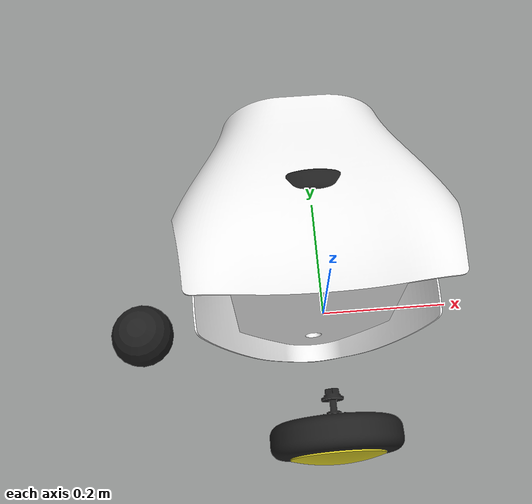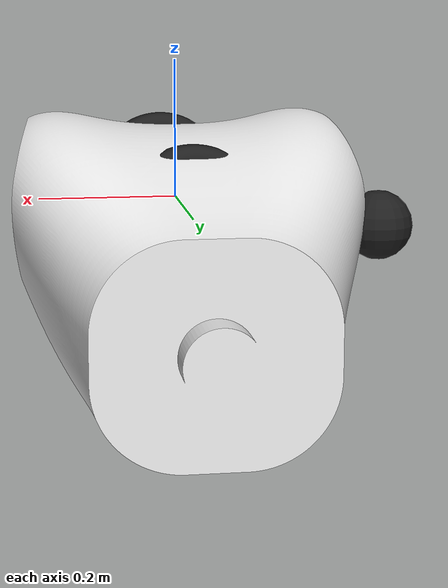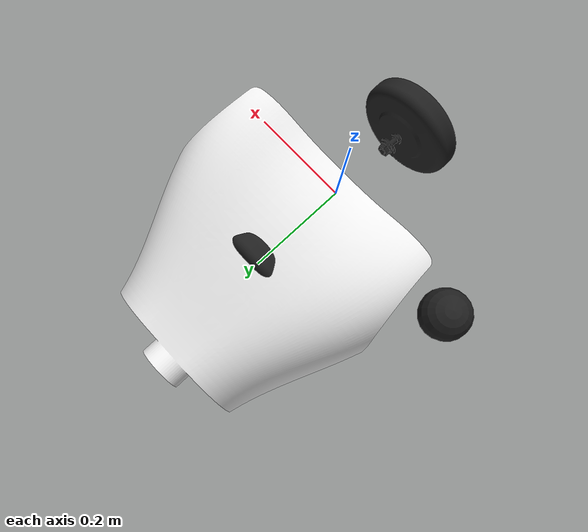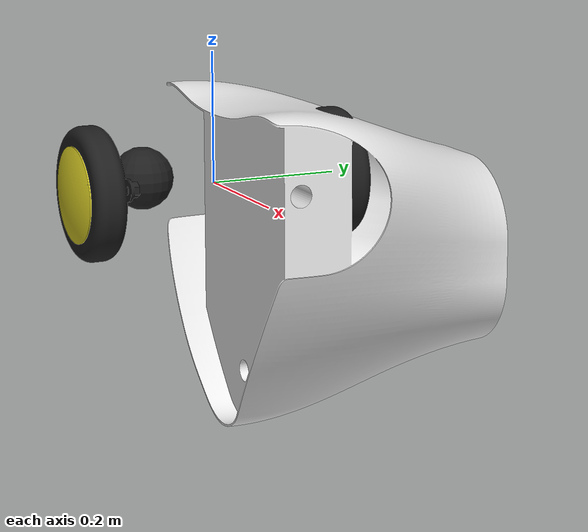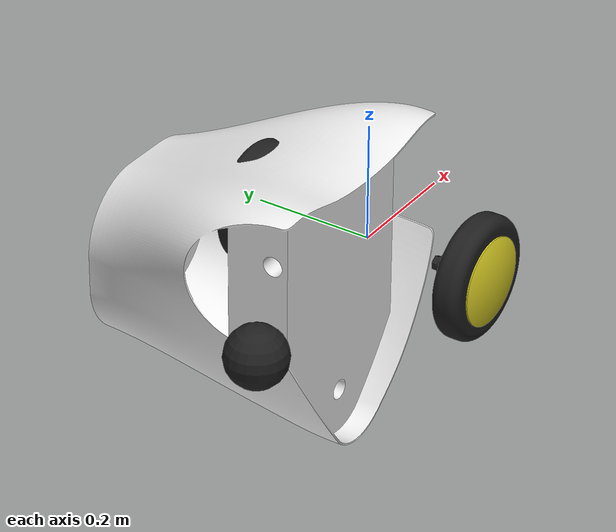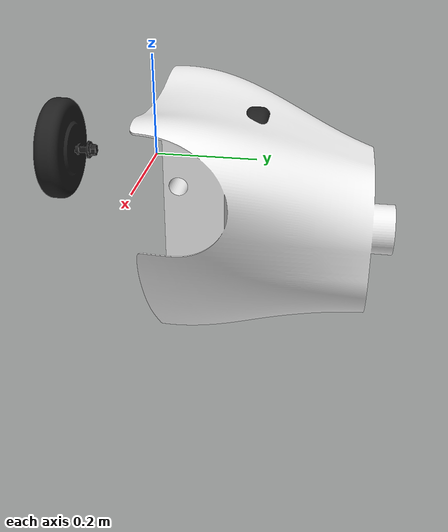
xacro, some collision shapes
<?xml version="1.0"?>
<robot name="stevie" xmlns:xacro="http://ros.org/wiki/xacro">

  <!-- VARIABLES -->
  <xacro:property name="lower_body_name" value="lower_body"/>
  <xacro:property name="upper_body_name" value="upper_body"/>

	<xacro:property name="front_left_camera_name" value="front_left_camera"/>
	<xacro:property name="front_right_camera_name" value="front_right_camera"/>
	<xacro:property name="back_camera_name" value="back_camera"/>
	<xacro:property name="top_camera_name" value="top_camera"/>
	<xacro:property name="front_laser_name" value="front_laser"/>
	<xacro:property name="back_laser_name" value="back_laser"/>
	<xacro:property name="kinect_name" value="kinect"/>

	<xacro:property name="PI" value="3.14159"/>

  <!-- DEPENDENCIES -->
  <xacro:include filename="$(find stevie_description)/urdf/macros.xacro" />
  <xacro:include filename="$(find stevie_description)/urdf/materials.xacro" />
  <xacro:include filename="$(find stevie_description)/urdf/stevie.gazebo"/>
  <xacro:include filename="$(find stevie_description)/urdf/sensors/sensor_macros.xacro"/>

  <!-- LOAD ROBOT COMPONENT FILES -->
  <xacro:include filename="$(find stevie_description)/urdf/lower_body/lower_body.xacro" />
  <xacro:include filename="$(find stevie_description)/urdf/upper_body/upper_body.xacro" />
  <xacro:include filename="$(find stevie_description)/urdf/arms/arms.xacro" />
  <xacro:include filename="$(find stevie_description)/urdf/head/head.xacro" />

  <!-- ROBOT COMPONENTS -->
  <xacro:lower_body  name="${lower_body_name}"/>

</robot>

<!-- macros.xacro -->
<robot  xmlns:xacro="http://ros.org/wiki/xacro">

  <!-- scale the inertia -->
  <xacro:macro name="scale_inertia" params="m v ixx ixy ixz iyy iyz izz" >
		<inertia 	ixx="${ixx * m / v}" 	ixy="${ixy * m / v}" 	ixz="${ixz * m / v}"
																		iyy="${iyy * m / v}" 	iyz="${iyz * m / v}"
																													izz="${izz * m / v}"
		/>
	</xacro:macro>

  <!-- compute the inertia of a box -->
  <xacro:macro name="box_inertia" params="m x y z">
    <inertia  ixx="${m*(y*y+z*z)/12}" ixy="0" ixz="0"
              iyy="${m*(x*x+z*z)/12}" iyz="0"
              izz="${m*(x*x+y*y)/12}"
    />
  </xacro:macro>

  <!-- compute the inertia of a sphere -->
  <xacro:macro name="sphere_inertia" params="m r">
    <inertia  ixx="${2*m*r*r/5}" ixy="0" ixz="0"
              iyy="${2*m*r*r/5}" iyz="0"
              izz="${2*m*r*r/5}"
    />
  </xacro:macro>

  <!-- compute the inertia of a cylinder -->
	<xacro:macro name="cylinder_inertia" params="m r h">
	  <inertia  ixx="${m*(3*r*r+h*h)/12}" ixy = "0" ixz = "0"
	    iyy="${m*(3*r*r+h*h)/12}" iyz = "0"
	    izz="${m*r*r/2}"
	  />
	</xacro:macro>

</robot>

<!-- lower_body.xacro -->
<robot  xmlns:xacro="http://ros.org/wiki/xacro">

	<xacro:include filename="$(find stevie_description)/urdf/wheels/wheels.xacro" />
	<xacro:include filename="$(find stevie_description)/urdf/caster/caster.xacro" />

	<!-- DECLARE VARIABLES -->
	<xacro:property name="lower_body_mass" value="40"/>
	<xacro:property name="lower_body_volume" value="0.016607"/>
	<xacro:property name="lower_body_length" value="0.485903"/>
	<xacro:property name="lower_body_width" value="0.516555"/>
	<xacro:property name="lower_body_height" value="0.475"/>

	<xacro:property name="lower_body_center_of_mass" value="-0.112043 0.000001 0.051805"/>
	<!--xacro:property name="lower_body_center_of_mass" value="-0.212043 0.000001 0"/-->

	<xacro:property name="PI" value="3.14159"/>

	<!--************************        LOWER BODY          ************************-->
  <xacro:macro name="lower_body" params="name" >

		<!-- base link -->
		<link name="base_link"/>

		<!-- lower body link -->
		<link name="${name}_link">
			<collision>
				<origin xyz="0 0 0" rpy="0 0 0"/>
				<geometry>
					<mesh filename="package://stevie_description/meshes/collision/lower_body_collision.stl" scale="0.001 0.001 0.001"/>
				</geometry>
			</collision>
			<visual>
				<origin xyz="0 0 0" rpy="0 0 0"/>
					<geometry>
				 		<mesh filename="package://stevie_description/meshes/visual/lower_body.stl" scale="0.001 0.001 0.001"/>
					</geometry>
			</visual>
			<inertial>
				<origin xyz="${lower_body_center_of_mass}" rpy="0 0 0"/>
				<mass value="${lower_body_mass}"/>
				<xacro:scale_inertia m="${lower_body_mass}" v="${lower_body_volume}" ixx="0.0002557254" ixy="0.0000000013" ixz="0.0000038315" iyy="0.0004050320" iyz="-0.00000000634" izz="0.0004230882"/>
			</inertial>
		</link>

		<gazebo reference="${name}_link">
			<mu1>1.0</mu1>
			<mu2>1.0</mu2>
			<maxVel>0</maxVel>
			<material>Gazebo/White</material>
		</gazebo>

		<!-- footprint-lower_body joint -->
		<joint name="${name}_footprint_joint" type="fixed">
			<origin xyz="0 0 0" rpy="0 0 0"/>
			<parent link="base_link"/>
			<child link="${name}_link"/>
		</joint>

		<!-- wheels -->
		<xacro:wheel parent="${name}_link" side="right"/>
		<xacro:wheel parent="${name}_link" side="left"/>

		<!-- caster wheel -->
		<xacro:caster parent="${name}_link"/>

	</xacro:macro>

</robot>

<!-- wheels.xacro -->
<robot  xmlns:xacro="http://ros.org/wiki/xacro">

	<xacro:include filename="$(find stevie_description)/urdf/wheels/wheels.transmission.xacro" />

	<!-- DECLARE VARIABLES -->
	<xacro:property name="wheel_mass" value="1"/>
	<xacro:property name="wheel_radius" value="0.101238"/>
	<xacro:property name="wheel_thickness" value="0.045983"/>
	<xacro:property name="wheel_box_length" value="0.110775482"/>
	<xacro:property name="chassis_length" value="0.303032"/>
	<xacro:property name="chassis_width" value="0.5"/>

	<xacro:property name="PI" value="3.14159"/>

	<!--************************        WHEELS          ************************-->
  <xacro:macro name="wheel" params="parent side" >

		<!-- wheel link -->
		<link name="wheel_${side}_link">
			<collision>
				<origin xyz="0 0 0" rpy="0 ${PI/2} 0"/>
				<geometry>
			 		<cylinder length="${wheel_thickness}" radius="${wheel_radius}"/>
				</geometry>
			</collision>
			<visual>
				<origin xyz="0 0 0" rpy="0 0 0"/>
				<geometry>
					<mesh filename="package://stevie_description/meshes/visual/wheel.stl" scale="0.001 0.001 0.001"/>
				</geometry>
			</visual>
			<inertial>
				<origin xyz="0 0 0" rpy="0 ${PI/2} 0"/>
				<mass value="${wheel_mass}"/>
				<xacro:cylinder_inertia m="${wheel_mass}" r="${wheel_radius}" h="${wheel_thickness}"/>
			</inertial>
		</link>

		<gazebo reference="wheel_${side}_link">
			<mu1>100.0</mu1>
			<mu2>50.0</mu2>
			<material>Gazebo/Black</material>
		</gazebo>

		<!-- lower_body-wheel joint -->
		<joint name="wheel_${side}_joint" type="continuous">
			<xacro:if value="${side == 'right'}">
				<origin xyz="0 ${-wheel_thickness - chassis_length/2} 0" rpy="0 0 ${PI/2}"/>
				<axis xyz="1 0 0"/>
			</xacro:if>
			<xacro:if value="${side == 'left'}">
				<origin xyz="0 ${wheel_thickness + chassis_length/2} 0" rpy="0 0 ${-PI/2}"/>
				<axis xyz="-1 0 0"/>
			</xacro:if>
			<parent link="${parent}"/>
			<child link="wheel_${side}_link"/>
      <limit effort="100" velocity="100"/>
      <dynamics damping="1.0" friction="0.5"/>
		</joint>

		<!-- transmission -->
		<xacro:wheel_transmission side="${side}"/>

		<!--************************        WHEEL CAPS          ************************-->
		<!-- wheel cap link -->
		<link name="wheel_cap_${side}_link">
			<visual>
				<origin xyz="0 0 0" rpy="0 0 0"/>
				<geometry>
					<!-- slightly larger scale so the yellow cap can cover the one already on the wheel mesh -->
					<mesh filename="package://stevie_description/meshes/visual/wheel_cap.stl" scale="0.001001 0.001001 0.001001"/>
				</geometry>
			</visual>
			<inertial>
				<origin xyz="0 0 0" rpy="0 ${PI/2} 0"/>
				<mass value="0.00001"/>
				<inertia ixx="0.000001" ixy="0" ixz="0" iyy="0.000001" iyz="0" izz="0.000001"/>
			</inertial>
		</link>

		<gazebo reference="wheel_cap_${side}_link">
			<material>Gazebo/Yellow</material>
		</gazebo>

		<!-- wheel_cap joint -->
		<joint name="wheel_cap_${side}_joint" type="fixed">
			<origin xyz="0 0 0" rpy="0 0 0"/>
			<parent link="wheel_${side}_link"/>
			<child link="wheel_cap_${side}_link"/>
		</joint>

	</xacro:macro>

</robot>

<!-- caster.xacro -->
<robot  xmlns:xacro="http://ros.org/wiki/xacro">

	<!-- DECLARE VARIABLES -->
	<xacro:property name="caster_mass" value="0.5"/>
	<xacro:property name="caster_radius" value="0.052"/>

	<xacro:property name="caster_x_adjustment" value="-0.3055"/>
	<xacro:property name="caster_z_adjustment" value="-0.05"/>

	<xacro:property name="PI" value="3.14159"/>

	<!--************************        CASTER          ************************-->
  <xacro:macro name="caster" params="parent" >

		<!-- caster link -->
		<link name="caster_link">
			<collision>
				<origin xyz="0 0 0" rpy="0 0 0"/>
				<geometry>
					<sphere radius="${caster_radius}"/>
				</geometry>
			</collision>
			<visual>
				<origin xyz="0 0 0" rpy="0 0 0"/>
				<geometry>
					<mesh filename="package://stevie_description/meshes/visual/caster.stl" scale="0.001 0.001 0.001"/>
				</geometry>
			</visual>
			<inertial>
				<origin xyz="0 0 0" rpy="0 0 0"/>
				<mass value="${caster_mass}"/>
				<xacro:sphere_inertia m="${caster_mass}" r="${caster_radius}"/>
			</inertial>
		</link>

		<gazebo reference="caster_link">
			<mu1>0.0</mu1>
			<mu2>0.0</mu2>
			<material>Gazebo/Black</material>
		</gazebo>

		<!-- footprint-caster joint -->
		<joint name="caster_joint" type="fixed">
			<origin xyz="${caster_x_adjustment} 0 ${caster_z_adjustment}" rpy="0 0 0"/>
			<parent link="${parent}"/>
			<child link="caster_link"/>
		</joint>

	</xacro:macro>

</robot>

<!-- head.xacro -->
<robot  xmlns:xacro="http://ros.org/wiki/xacro">

	<xacro:include filename="$(find stevie_description)/urdf/head/head.transmission.xacro" />

	<xacro:include filename="$(find stevie_description)/urdf/head/neck.xacro" />

	<!-- DECLARE VARIABLES -->
	<xacro:property name="head_mass" value="1.5"/>
	<xacro:property name="head_length" value="0.241447327"/>
	<xacro:property name="head_width" value="0.241648773"/>
	<xacro:property name="head_height" value="0.300608185"/>

	<xacro:property name="PI" value="3.14159"/>

	<!--************************        HEAD          ************************-->
  <xacro:macro name="head" params="parent" >

		<!-- neck -->
	  <xacro:neck parent="${parent}"/>

		<!-- head link -->
		<link name="head_link">
			<collision>
				<origin xyz="0 0 0" rpy="0 0 0"/>
				<geometry>
					<mesh filename="package://stevie_description/meshes/collision/head_collision.stl" scale="0.001 0.001 0.001"/>
				</geometry>
			</collision>
			<visual>
				<origin xyz="0 0 0" rpy="0 0 0"/>
				<geometry>
			 		<mesh filename="package://stevie_description/meshes/visual/head.stl" scale="0.001 0.001 0.001"/>
				</geometry>
			</visual>
			<inertial>
				<origin xyz="0 0 ${head_height / 2}" rpy="0 0 0"/>
				<mass value="${head_mass}"/>
				<xacro:box_inertia m="${head_mass}" x="${head_width}" y="${head_length}" z="${head_height}"/>
			</inertial>
		</link>

		<gazebo reference="head_link">
			<mu1>1.0</mu1>
			<mu2>1.0</mu2>
			<maxVel>0</maxVel>
			<material>Gazebo/White</material>
		</gazebo>

		<!-- neck-head joint -->
		<joint name="neck_head_joint" type="revolute">
			<origin xyz="0 0 0" rpy="0 0 0"/>
			<axis xyz="0 1 0"/>
			<limit lower="-${PI/4}" upper="${PI/4}" effort="1000.0" velocity="0.5"/>
			<parent link="neck_link"/>
			<child link="head_link"/>
      <dynamics damping="10" friction="0.5"/>
		</joint>

		<!-- transmission -->
		<xacro:head_transmission/>

		<!--************************        SCREENS          ************************-->
		<!-- upper screen link -->
		<link name="upper_screen_link">
			<visual>
				<origin xyz="0 0 0" rpy="0 0 0"/>
				<geometry>
					<box size="0.001 0.18 0.14"/>
				</geometry>
			</visual>
			<inertial>
				<origin xyz="0 0 0" rpy="0 ${PI/2} 0"/>
				<mass value="0.00001"/>
				<inertia ixx="0.000001" ixy="0" ixz="0" iyy="0.000001" iyz="0" izz="0.000001"/>
			</inertial>
		</link>

		<gazebo reference="upper_screen_link">
			<xacro:eyes/>
		</gazebo>

		<!-- upper_screen joint -->
		<joint name="upper_screen_joint" type="fixed">
			<origin xyz="0.11128992 0 0.18088210" rpy="0 -0.31 0"/>
			<parent link="head_link"/>
			<child link="upper_screen_link"/>
		</joint>

		<!-- lower screen link -->
		<link name="lower_screen_link">
			<visual>
				<origin xyz="0 0 0" rpy="0 0 0"/>
				<geometry>
					<box size="0.001 0.14 0.11"/>
				</geometry>
			</visual>
			<inertial>
				<origin xyz="0 0 0" rpy="0 ${PI/2} 0"/>
				<mass value="0.00001"/>
				<inertia ixx="0.000001" ixy="0" ixz="0" iyy="0.000001" iyz="0" izz="0.000001"/>
			</inertial>
		</link>

		<gazebo reference="lower_screen_link">
			<xacro:mouth/>
		</gazebo>

		<!-- lower_screen joint -->
		<joint name="lower_screen_joint" type="fixed">
			<origin xyz="0.11499191 0 0.04708293" rpy="0 0.3 0"/>
			<parent link="head_link"/>
			<child link="lower_screen_link"/>
		</joint>

		<!--************************        EARCOVERS          ************************-->
		<!-- earcovers link -->
		<link name="earcovers_link">
			<visual>
				<origin xyz="0 0 0" rpy="0 0 0"/>
				<geometry>
					<mesh filename="package://stevie_description/meshes/visual/earcovers.stl" scale="0.001 0.001 0.001"/>
				</geometry>
			</visual>
			<inertial>
				<origin xyz="0 0 0" rpy="0 ${PI/2} 0"/>
				<mass value="0.00001"/>
				<inertia ixx="0.000001" ixy="0" ixz="0" iyy="0.000001" iyz="0" izz="0.000001"/>
			</inertial>
		</link>

		<gazebo reference="earcovers_link">
			<material>Gazebo/Yellow</material>
		</gazebo>

		<!-- upper_screen joint -->
		<joint name="earcovers_joint" type="fixed">
			<origin xyz="0 0 0" rpy="0 0 0"/>
			<parent link="head_link"/>
			<child link="earcovers_link"/>
		</joint>

	</xacro:macro>

</robot>
